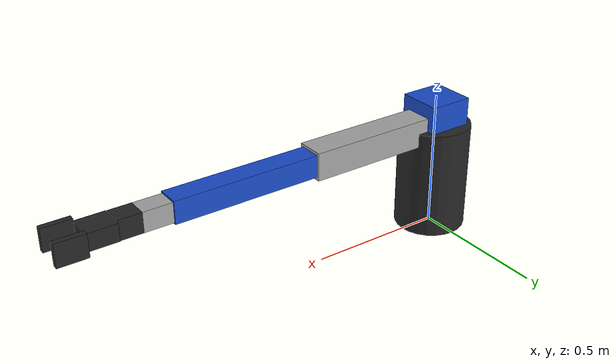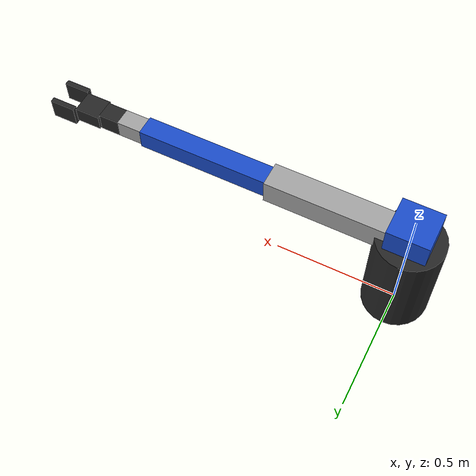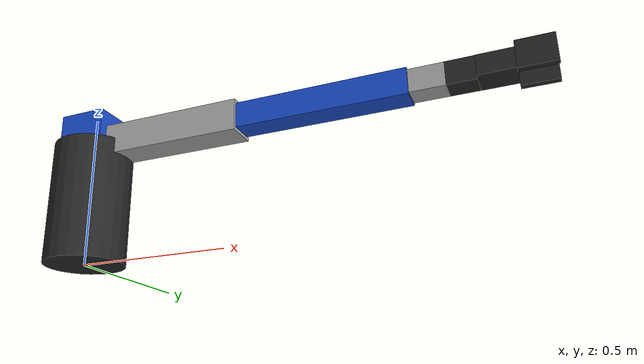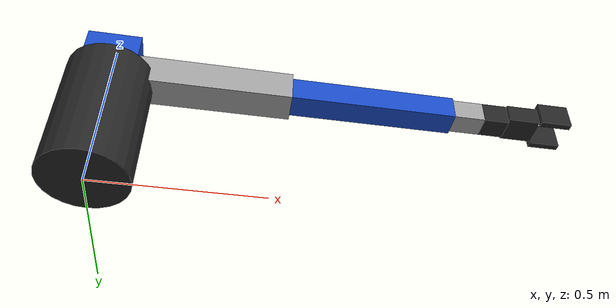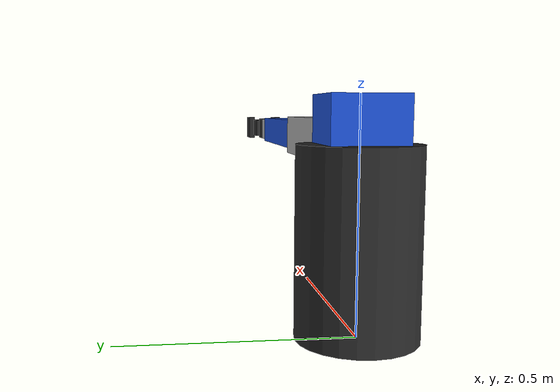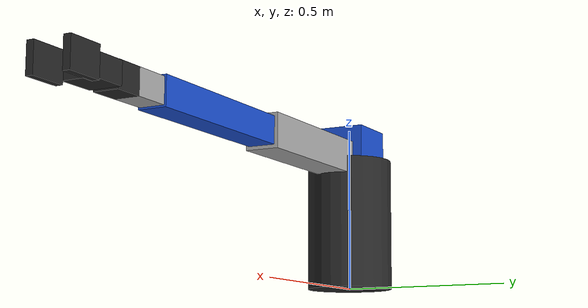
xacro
<?xml version="1.0"?>
<robot xmlns:xacro="http://www.ros.org/wiki/xacro"
       name="cell_robot">

  <!-- ================= MATERIALS ================= -->
  <material name="blue">   <color rgba="0.1 0.3 0.8 1"/></material>
  <material name="dark">   <color rgba="0.15 0.15 0.15 1"/></material>
  <material name="silver"> <color rgba="0.65 0.65 0.65 1"/></material>

  <!-- ================= WORLD ================= -->
  <link name="world"/>

  <!-- ================= BASE ================= -->
  <link name="base_link">
    <visual>
      <origin xyz="0 0 0.20"/>
      <geometry><cylinder radius="0.13" length="0.40"/></geometry>
      <material name="dark"/>
    </visual>
    <collision>
      <origin xyz="0 0 0.20"/>
      <geometry><cylinder radius="0.13" length="0.40"/></geometry>
    </collision>
    <inertial>
      <origin xyz="0 0 0.20"/>
      <mass value="6.0"/>
      <inertia ixx="0.08" ixy="0" ixz="0" iyy="0.08" iyz="0" izz="0.05"/>
    </inertial>
  </link>

  <joint name="world_to_base" type="fixed">
    <parent link="world"/><child link="base_link"/>
    <origin xyz="0 0 0"/>
  </joint>

  <!-- ================= J1 : BASE YAW (Z) ================= -->
  <link name="shoulder_link">
    <visual>
      <origin xyz="0 0 0.03"/>
      <geometry><box size="0.16 0.16 0.14"/></geometry>
      <material name="blue"/>
    </visual>
    <collision>
      <origin xyz="0 0 0.03"/>
      <geometry><box size="0.16 0.16 0.14"/></geometry>
    </collision>
    <inertial>
      <origin xyz="0 0 0.03"/>
      <mass value="2.5"/>
      <inertia ixx="0.01" ixy="0" ixz="0" iyy="0.01" iyz="0" izz="0.01"/>
    </inertial>
  </link>

  <joint name="joint1" type="revolute">
    <parent link="base_link"/><child link="shoulder_link"/>
    <origin xyz="0 0 0.40"/><axis xyz="0 0 1"/>
    <limit lower="-3.14" upper="3.14" effort="150" velocity="1.5"/>
  </joint>

  <!-- ================= J2 : SHOULDER PITCH (Y) ================= -->
  <link name="upper_arm_link">
    <visual>
      <origin xyz="0.275 0 0"/>
      <geometry><box size="0.55 0.10 0.10"/></geometry>
      <material name="silver"/>
    </visual>
    <collision>
      <origin xyz="0.275 0 0"/>
      <geometry><box size="0.55 0.10 0.10"/></geometry>
    </collision>
    <inertial>
      <origin xyz="0.275 0 0"/>
      <mass value="2.0"/>
      <inertia ixx="0.003" ixy="0" ixz="0" iyy="0.052" iyz="0" izz="0.052"/>
    </inertial>
  </link>

  <joint name="joint2" type="revolute">
    <parent link="shoulder_link"/><child link="upper_arm_link"/>
    <origin xyz="0 0 0"/><axis xyz="0 1 0"/>
    <limit lower="-1.9" upper="1.9" effort="150" velocity="1.5"/>
  </joint>

  <!-- ================= J3 : ELBOW PITCH (Y) ================= -->
  <link name="forearm_link">
    <visual>
      <origin xyz="0.26 0 0"/>
      <geometry><box size="0.52 0.08 0.08"/></geometry>
      <material name="blue"/>
    </visual>
    <collision>
      <origin xyz="0.26 0 0"/>
      <geometry><box size="0.52 0.08 0.08"/></geometry>
    </collision>
    <inertial>
      <origin xyz="0.26 0 0"/>
      <mass value="1.5"/>
      <inertia ixx="0.002" ixy="0" ixz="0" iyy="0.035" iyz="0" izz="0.035"/>
    </inertial>
  </link>

  <joint name="joint3" type="revolute">
    <parent link="upper_arm_link"/><child link="forearm_link"/>
    <origin xyz="0.55 0 0"/><axis xyz="0 1 0"/>
    <limit lower="-2.5" upper="2.5" effort="100" velocity="1.5"/>
  </joint>

  <!-- ================= J4 : WRIST ROLL (X) ================= -->
  <link name="wrist1_link">
    <visual>
      <origin xyz="0.05 0 0"/>
      <geometry><box size="0.10 0.07 0.07"/></geometry>
      <material name="silver"/>
    </visual>
    <collision>
      <origin xyz="0.05 0 0"/>
      <geometry><box size="0.10 0.07 0.07"/></geometry>
    </collision>
    <inertial>
      <origin xyz="0.05 0 0"/>
      <mass value="0.6"/>
      <inertia ixx="0.0008" ixy="0" ixz="0" iyy="0.001" iyz="0" izz="0.001"/>
    </inertial>
  </link>

  <joint name="joint4" type="revolute">
    <parent link="forearm_link"/><child link="wrist1_link"/>
    <origin xyz="0.52 0 0"/><axis xyz="1 0 0"/>
    <limit lower="-3.14" upper="3.14" effort="40" velocity="2.0"/>
  </joint>

  <!-- ================= J5 : WRIST PITCH (Y) ================= -->
  <link name="wrist2_link">
    <visual>
      <origin xyz="0.04 0 0"/>
      <geometry><box size="0.08 0.07 0.07"/></geometry>
      <material name="dark"/>
    </visual>
    <collision>
      <origin xyz="0.04 0 0"/>
      <geometry><box size="0.08 0.07 0.07"/></geometry>
    </collision>
    <inertial>
      <origin xyz="0.04 0 0"/>
      <mass value="0.5"/>
      <inertia ixx="0.0006" ixy="0" ixz="0" iyy="0.0008" iyz="0" izz="0.0008"/>
    </inertial>
  </link>

  <joint name="joint5" type="revolute">
    <parent link="wrist1_link"/><child link="wrist2_link"/>
    <origin xyz="0.10 0 0"/><axis xyz="0 1 0"/>
    <limit lower="-2.0" upper="2.0" effort="40" velocity="2.0"/>
  </joint>

  <!-- ================= J6 : TOOL ROLL (X) ================= -->
  <link name="tool_link">
    <visual>
      <origin xyz="0.05 0 0"/>
      <geometry><box size="0.10 0.09 0.06"/></geometry>
      <material name="dark"/>
    </visual>
    <collision>
      <origin xyz="0.05 0 0"/>
      <geometry><box size="0.10 0.09 0.06"/></geometry>
    </collision>
    <inertial>
      <origin xyz="0.05 0 0"/>
      <mass value="0.4"/>
      <inertia ixx="0.0004" ixy="0" ixz="0" iyy="0.0006" iyz="0" izz="0.0006"/>
    </inertial>
  </link>

  <joint name="joint6" type="revolute">
    <parent link="wrist2_link"/><child link="tool_link"/>
    <origin xyz="0.08 0 0"/><axis xyz="1 0 0"/>
    <limit lower="-3.14" upper="3.14" effort="40" velocity="2.0"/>
  </joint>

  <!-- ================= GRIPPER FINGERS ================= -->
  <!-- Fingers extend along +X (the approach axis) and straddle the
       0.08 m cube in Y. Grasp center = tcp_link below. -->
  <link name="left_finger">
    <visual>
      <origin xyz="0.05 0.05 0"/>
      <geometry><box size="0.10 0.02 0.08"/></geometry>
      <material name="dark"/>
    </visual>
    <collision>
      <origin xyz="0.05 0.05 0"/>
      <geometry><box size="0.10 0.02 0.08"/></geometry>
    </collision>
    <inertial>
      <origin xyz="0.05 0.05 0"/><mass value="0.05"/>
      <inertia ixx="0.00002" ixy="0" ixz="0" iyy="0.00002" iyz="0" izz="0.00002"/>
    </inertial>
  </link>
  <joint name="left_finger_fixed" type="fixed">
    <parent link="tool_link"/><child link="left_finger"/>
    <origin xyz="0.10 0 0"/>
  </joint>

  <link name="right_finger">
    <visual>
      <origin xyz="0.05 -0.05 0"/>
      <geometry><box size="0.10 0.02 0.08"/></geometry>
      <material name="dark"/>
    </visual>
    <collision>
      <origin xyz="0.05 -0.05 0"/>
      <geometry><box size="0.10 0.02 0.08"/></geometry>
    </collision>
    <inertial>
      <origin xyz="0.05 -0.05 0"/><mass value="0.05"/>
      <inertia ixx="0.00002" ixy="0" ixz="0" iyy="0.00002" iyz="0" izz="0.00002"/>
    </inertial>
  </link>
  <joint name="right_finger_fixed" type="fixed">
    <parent link="tool_link"/><child link="right_finger"/>
    <origin xyz="0.10 0 0"/>
  </joint>

  <!-- Tool Center Point: grasp target used by the IK solver.
       0.12 m along the approach axis from the tool flange. -->
  <link name="tcp_link"/>
  <joint name="tool_to_tcp" type="fixed">
    <parent link="tool_link"/><child link="tcp_link"/>
    <origin xyz="0.12 0 0"/>
  </joint>

  <!-- ================= ROS2 CONTROL ================= -->
  <ros2_control name="GazeboSimSystem" type="system">
    <hardware>
      <plugin>gz_ros2_control/GazeboSimSystem</plugin>
    </hardware>

    <joint name="joint1">
      <command_interface name="position"/>
      <state_interface name="position"/>
      <state_interface name="velocity"/>
    </joint>
    <joint name="joint2">
      <command_interface name="position"/>
      <state_interface name="position"/>
      <state_interface name="velocity"/>
    </joint>
    <joint name="joint3">
      <command_interface name="position"/>
      <state_interface name="position"/>
      <state_interface name="velocity"/>
    </joint>
    <joint name="joint4">
      <command_interface name="position"/>
      <state_interface name="position"/>
      <state_interface name="velocity"/>
    </joint>
    <joint name="joint5">
      <command_interface name="position"/>
      <state_interface name="position"/>
      <state_interface name="velocity"/>
    </joint>
    <joint name="joint6">
      <command_interface name="position"/>
      <state_interface name="position"/>
      <state_interface name="velocity"/>
    </joint>
  </ros2_control>

  <!-- Gazebo ros2_control plugin -->
  <gazebo>
    <plugin filename="libgz_ros2_control-system.so"
            name="gz_ros2_control::GazeboSimROS2ControlPlugin">
      <parameters>$(find pick_place_cell_gazebo)/config/controllers.yaml</parameters>
    </plugin>
  </gazebo>

</robot>
